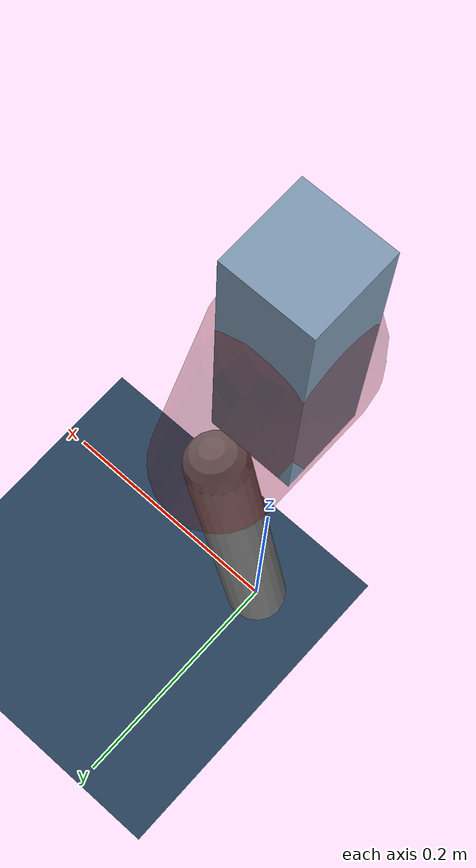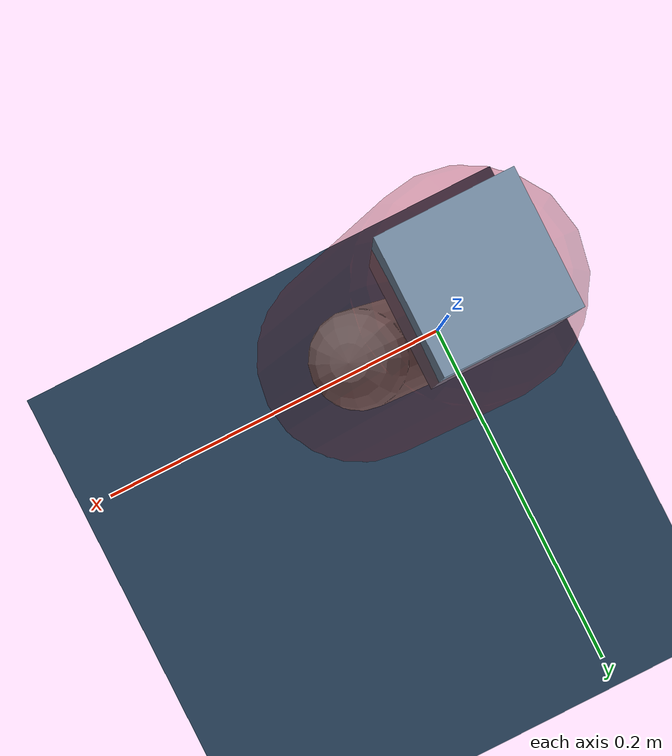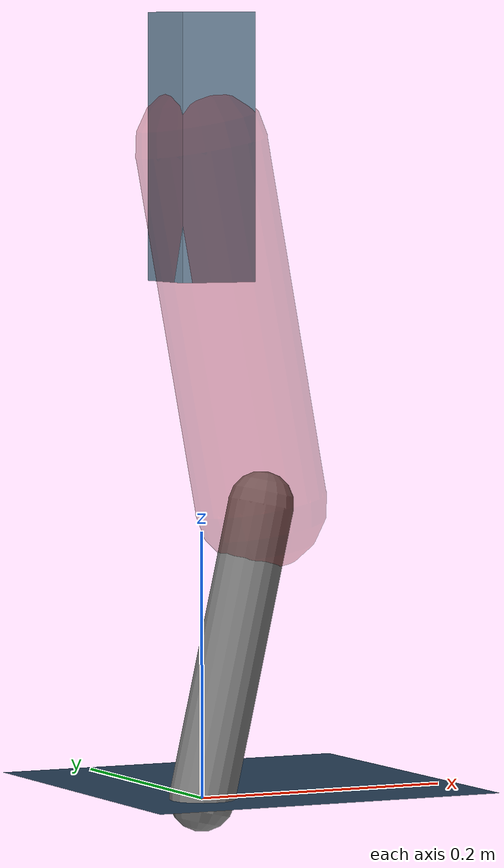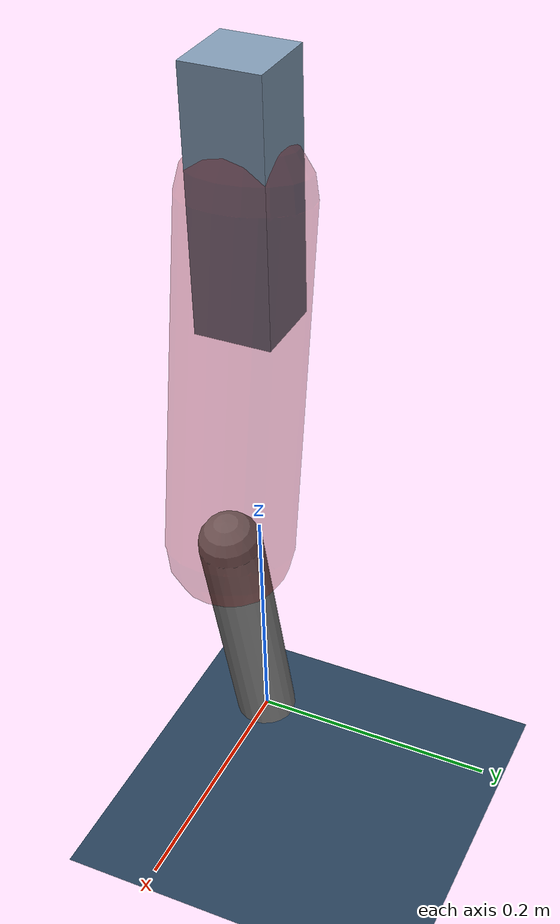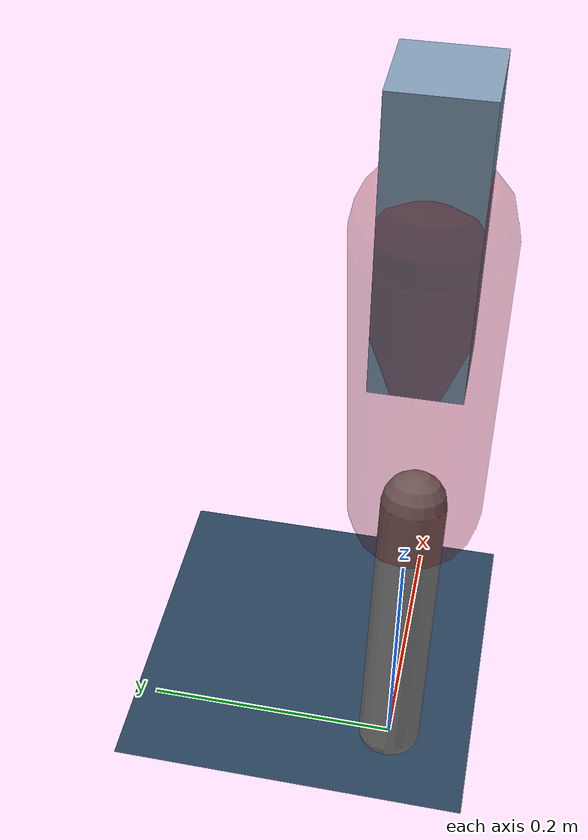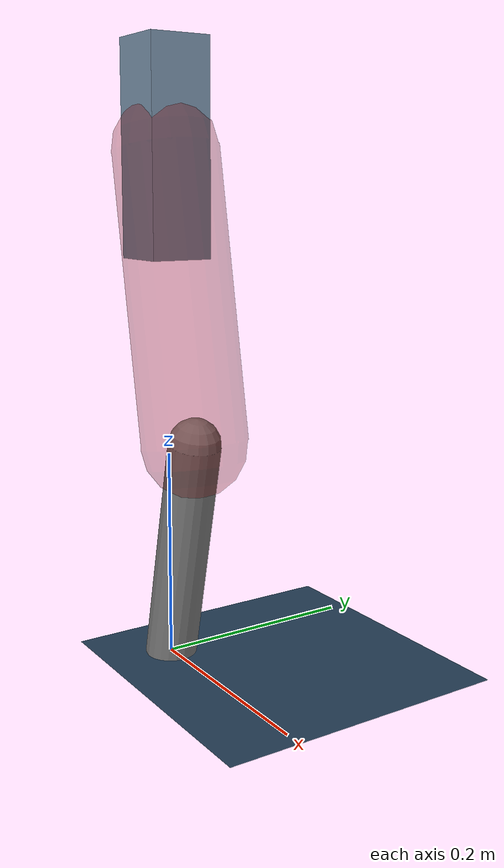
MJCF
<mujoco model="Hopper2D">
	<compiler inertiafromgeom="true" angle="radian" />
	<option timestep="0.001" integrator="implicit" cone="elliptic" solver="Newton" tolerance="1e-10" />

	<default>
		<geom contype="1" conaffinity="1" condim="3" friction="2 0.005 0.0001" solref="0.005 1" />
		<joint limited="true" damping="0.1" />
	</default>

	<asset>
		<texture name="skybox" type="skybox" builtin="gradient" rgb1=".4 .6 .8" rgb2="0 0 0" width="800" height="800" />
		<texture name="grid" type="2d" builtin="checker" rgb1=".1 .2 .3" rgb2=".2 .3 .4" width="300" height="300" mark="edge" markrgb=".2 .3 .4" />
		<material name="ground" texture="grid" texrepeat="1 1" texuniform="true" reflectance="0.1" />
		<material name="leg" rgba="0.5 0.6 0.7 1" />
	</asset>

	<worldbody>

		<geom name="floor" type="plane" size="5 5 0.25" material="ground" />

		<light directional="false" diffuse="0.8 0.8 0.8" specular="0.3 0.3 0.3" pos="0 0 2" dir="0 0 -1" />
		<light mode="targetbodycom" target="base" directional="false" diffuse="0.8 0.8 0.8" specular="0.3 0.3 0.3" pos="0 0 2" dir="0 0 -1" />

		<camera name="fixed" pos="0 -2 1" xyaxes="1 0 0 0 0 1" />
		<camera name="tracking" mode="trackcom" pos="0 -3 1" />

		<body name="root" pos="0 0 0.48740077139960275">
			<joint name="slide_x" type="slide" axis="1 0 0" range="-100 100" />
			<joint name="slide_z" type="slide" axis="0 0 1" range="0 10" />

			<body name="base" pos="0 0 0">
				<geom name="torso" type="box" size="0.03 0.03 0.1" mass="1.375" material="leg" />

				<body name="link1" pos="0 0 0" euler="0 1.3886443701260447 0">
					<joint type="hinge" axis="0 -1 0" pos="0 0 0" name="hinge1" limited="true" range="-3.14 3.14" stiffness="0" damping="0.1" />
					<geom name="thigh" type="capsule" fromto="0 0 0 0.27259456292274725 0 0" size="0.05" rgba="0.5 0 0 0.3" mass="0.9155053198914175" />

					<body name="link2" pos="0.27259456292274725 0 0" euler="0 0.40361141473298734 0">
						<joint type="hinge" axis="0 -1 0" pos="0 0 0" name="hinge2" limited="true" range="-3.14 3.14" stiffness="0" damping="0.1" />
						<geom name="shank" type="capsule" fromto="0 0 0 0.2248062084768555 0 0" size="0.025" mass="0.4216449667814844" />

					</body>
				</body>
			</body>
		</body>
	</worldbody>

	<actuator>
		<motor name="torque1" joint="hinge1" ctrlrange="-18.580435250315436 18.580435250315436" ctrllimited="true" gear="1" />
		<motor name="torque2" joint="hinge2" ctrlrange="-16.969847422067975 16.969847422067975" ctrllimited="true" gear="1" />
	</actuator>
</mujoco>
